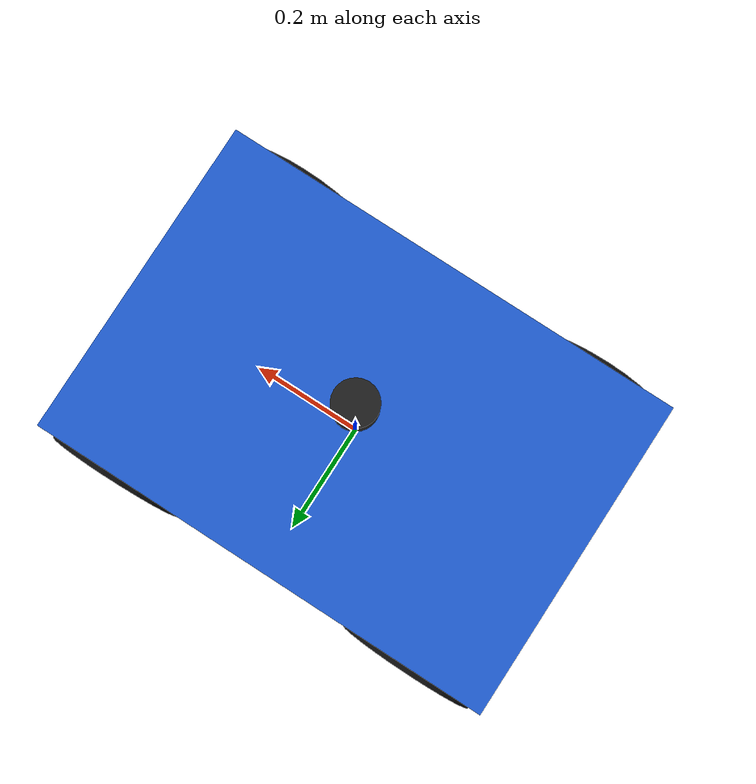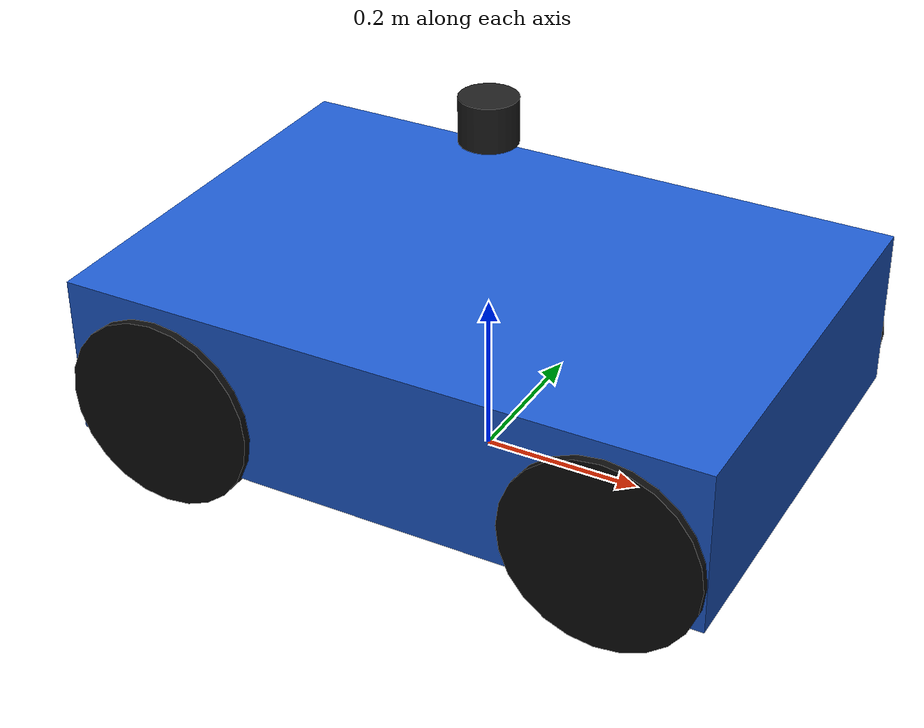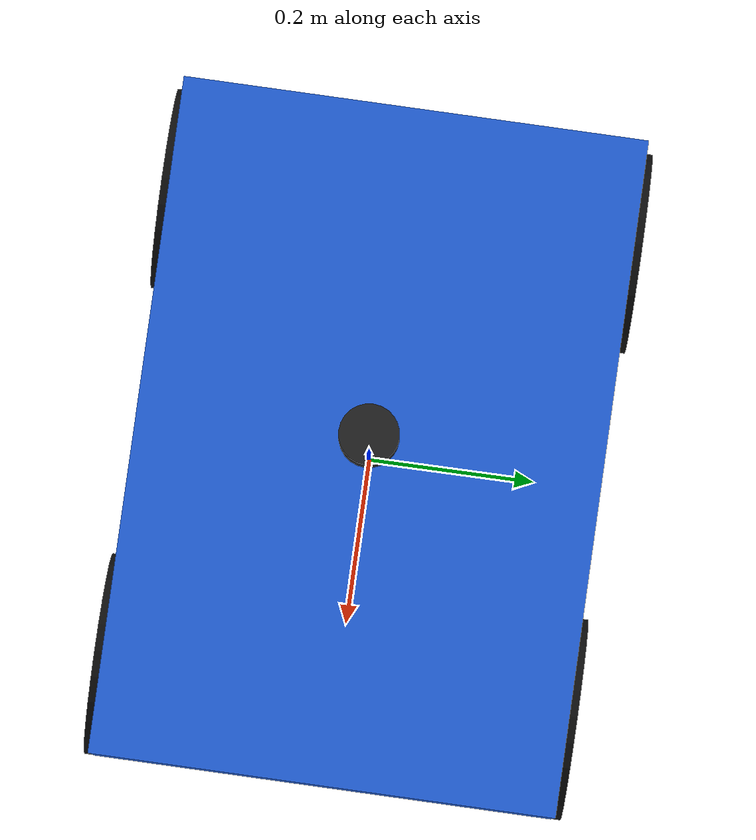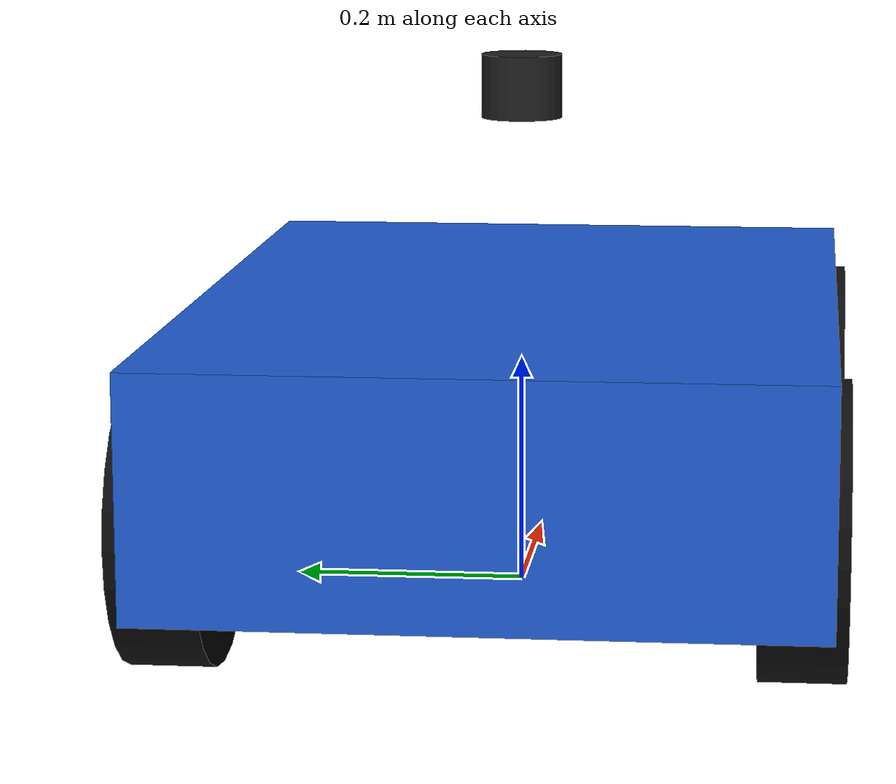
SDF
<?xml version="1.0"?>
<sdf version="1.8">
  <model name="lightning_cart" xmlns:ignition="http://ignitionrobotics.org/schema">
    <self_collide>false</self_collide>

    <link name="base_link">
      <pose>0 0 0.16 0 0 0</pose>
      <inertial>
        <mass>18.0</mass>
        <inertia>
          <ixx>0.514</ixx><iyy>1.006</iyy><izz>1.398</izz>
          <ixy>0</ixy><ixz>0</ixz><iyz>0</iyz>
        </inertia>
      </inertial>
      <collision name="collision">
        <geometry><box><size>0.80 0.55 0.20</size></box></geometry>
      </collision>
      <visual name="visual">
        <geometry><box><size>0.80 0.55 0.20</size></box></geometry>
        <material>
          <ambient>0.10 0.28 0.62 1</ambient>
          <diffuse>0.12 0.36 0.82 1</diffuse>
        </material>
      </visual>
      <sensor name="imu_sensor" type="imu">
        <pose>0 0 0 0 0 0</pose>
        <always_on>true</always_on>
        <update_rate>200</update_rate>
        <topic>/imu</topic>
        <enable_metrics>true</enable_metrics>
      </sensor>
    </link>

    <link name="livox_frame">
      <pose>0 0 0.44 0 0 0</pose>
      <inertial>
        <mass>0.265</mass>
        <inertia>
          <ixx>0.00045</ixx><iyy>0.00045</iyy><izz>0.00045</izz>
          <ixy>0</ixy><ixz>0</ixz><iyz>0</iyz>
        </inertia>
      </inertial>
      <collision name="collision">
        <geometry><cylinder><radius>0.035</radius><length>0.055</length></cylinder></geometry>
      </collision>
      <visual name="visual">
        <geometry><cylinder><radius>0.035</radius><length>0.055</length></cylinder></geometry>
        <material><diffuse>0.12 0.12 0.12 1</diffuse></material>
      </visual>
      <sensor name="mid360_sim" type="gpu_lidar">
        <pose>0 0 0 0 0 0</pose>
        <ignition_frame_id>livox_frame</ignition_frame_id>
        <always_on>true</always_on>
        <update_rate>10</update_rate>
        <topic>/livox/lidar</topic>
        <visualize>true</visualize>
        <lidar>
          <scan>
            <horizontal>
              <samples>720</samples><resolution>1</resolution>
              <min_angle>-3.14159265</min_angle><max_angle>3.14159265</max_angle>
            </horizontal>
            <vertical>
              <samples>24</samples><resolution>1</resolution>
              <min_angle>-0.12217305</min_angle><max_angle>0.90757121</max_angle>
            </vertical>
          </scan>
          <range><min>0.10</min><max>40.0</max><resolution>0.01</resolution></range>
          <noise><type>gaussian</type><mean>0.0</mean><stddev>0.01</stddev></noise>
        </lidar>
      </sensor>
    </link>

    <link name="front_left_wheel">
      <pose>0.28 0.25 0.12 1.5708 0 0</pose>
      <inertial><mass>1.0</mass><inertia><ixx>0.0078</ixx><iyy>0.0078</iyy><izz>0.0144</izz><ixy>0</ixy><ixz>0</ixz><iyz>0</iyz></inertia></inertial>
      <collision name="collision">
        <geometry><cylinder><radius>0.12</radius><length>0.07</length></cylinder></geometry>
        <surface><friction><ode><mu>1.0</mu><mu2>0.0</mu2><fdir1 ignition:expressed_in="base_link">1 -1 0</fdir1></ode></friction></surface>
      </collision>
      <visual name="visual"><geometry><cylinder><radius>0.12</radius><length>0.07</length></cylinder></geometry><material><diffuse>0.05 0.05 0.05 1</diffuse></material></visual>
    </link>

    <link name="front_right_wheel">
      <pose>0.28 -0.25 0.12 1.5708 0 0</pose>
      <inertial><mass>1.0</mass><inertia><ixx>0.0078</ixx><iyy>0.0078</iyy><izz>0.0144</izz><ixy>0</ixy><ixz>0</ixz><iyz>0</iyz></inertia></inertial>
      <collision name="collision">
        <geometry><cylinder><radius>0.12</radius><length>0.07</length></cylinder></geometry>
        <surface><friction><ode><mu>1.0</mu><mu2>0.0</mu2><fdir1 ignition:expressed_in="base_link">1 1 0</fdir1></ode></friction></surface>
      </collision>
      <visual name="visual"><geometry><cylinder><radius>0.12</radius><length>0.07</length></cylinder></geometry><material><diffuse>0.05 0.05 0.05 1</diffuse></material></visual>
    </link>

    <link name="rear_left_wheel">
      <pose>-0.28 0.25 0.12 1.5708 0 0</pose>
      <inertial><mass>1.0</mass><inertia><ixx>0.0078</ixx><iyy>0.0078</iyy><izz>0.0144</izz><ixy>0</ixy><ixz>0</ixz><iyz>0</iyz></inertia></inertial>
      <collision name="collision">
        <geometry><cylinder><radius>0.12</radius><length>0.07</length></cylinder></geometry>
        <surface><friction><ode><mu>1.0</mu><mu2>0.0</mu2><fdir1 ignition:expressed_in="base_link">1 1 0</fdir1></ode></friction></surface>
      </collision>
      <visual name="visual"><geometry><cylinder><radius>0.12</radius><length>0.07</length></cylinder></geometry><material><diffuse>0.05 0.05 0.05 1</diffuse></material></visual>
    </link>

    <link name="rear_right_wheel">
      <pose>-0.28 -0.25 0.12 1.5708 0 0</pose>
      <inertial><mass>1.0</mass><inertia><ixx>0.0078</ixx><iyy>0.0078</iyy><izz>0.0144</izz><ixy>0</ixy><ixz>0</ixz><iyz>0</iyz></inertia></inertial>
      <collision name="collision">
        <geometry><cylinder><radius>0.12</radius><length>0.07</length></cylinder></geometry>
        <surface><friction><ode><mu>1.0</mu><mu2>0.0</mu2><fdir1 ignition:expressed_in="base_link">1 -1 0</fdir1></ode></friction></surface>
      </collision>
      <visual name="visual"><geometry><cylinder><radius>0.12</radius><length>0.07</length></cylinder></geometry><material><diffuse>0.05 0.05 0.05 1</diffuse></material></visual>
    </link>

    <joint name="front_left_wheel_joint" type="revolute">
      <parent>base_link</parent><child>front_left_wheel</child>
      <axis><xyz expressed_in="__model__">0 1 0</xyz><limit><lower>-1e16</lower><upper>1e16</upper></limit></axis>
    </joint>
    <joint name="front_right_wheel_joint" type="revolute">
      <parent>base_link</parent><child>front_right_wheel</child>
      <axis><xyz expressed_in="__model__">0 1 0</xyz><limit><lower>-1e16</lower><upper>1e16</upper></limit></axis>
    </joint>
    <joint name="rear_left_wheel_joint" type="revolute">
      <parent>base_link</parent><child>rear_left_wheel</child>
      <axis><xyz expressed_in="__model__">0 1 0</xyz><limit><lower>-1e16</lower><upper>1e16</upper></limit></axis>
    </joint>
    <joint name="rear_right_wheel_joint" type="revolute">
      <parent>base_link</parent><child>rear_right_wheel</child>
      <axis><xyz expressed_in="__model__">0 1 0</xyz><limit><lower>-1e16</lower><upper>1e16</upper></limit></axis>
    </joint>
    <joint name="livox_joint" type="fixed">
      <parent>base_link</parent><child>livox_frame</child>
    </joint>

    <plugin filename="ignition-gazebo-mecanum-drive-system"
            name="ignition::gazebo::systems::MecanumDrive">
      <front_left_joint>front_left_wheel_joint</front_left_joint>
      <front_right_joint>front_right_wheel_joint</front_right_joint>
      <back_left_joint>rear_left_wheel_joint</back_left_joint>
      <back_right_joint>rear_right_wheel_joint</back_right_joint>
      <wheel_separation>0.50</wheel_separation>
      <wheelbase>0.56</wheelbase>
      <wheel_radius>0.12</wheel_radius>
      <odom_topic>/odom</odom_topic>
      <tf_topic>/tf</tf_topic>
      <child_frame_id>base_link</child_frame_id>
      <odom_publish_frequency>50</odom_publish_frequency>
      <max_velocity>1.0</max_velocity>
      <min_velocity>-0.5</min_velocity>
      <max_acceleration>1.0</max_acceleration>
      <min_acceleration>-1.0</min_acceleration>
    </plugin>
  </model>
</sdf>
